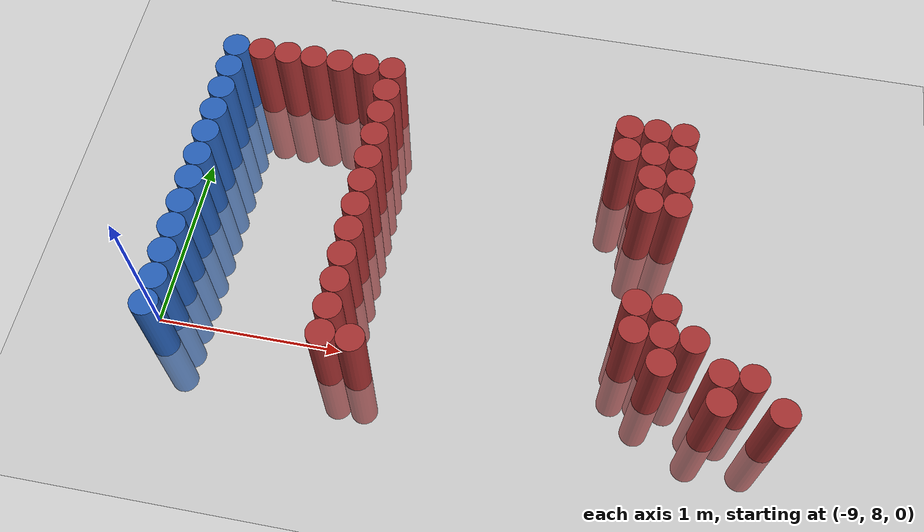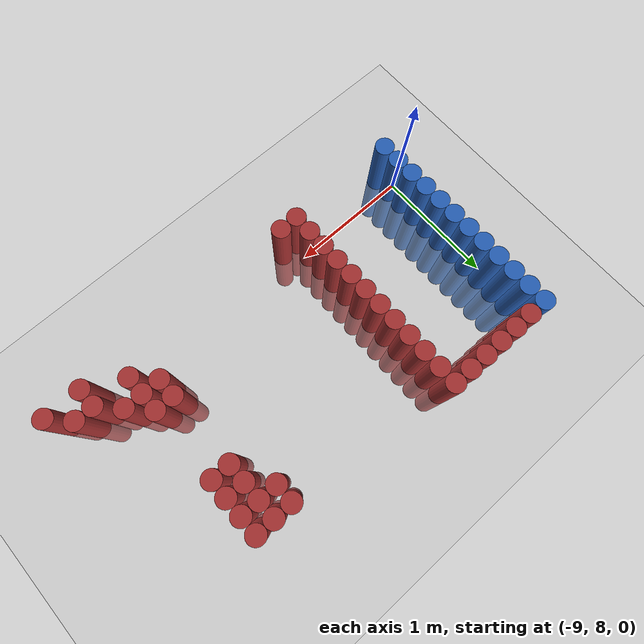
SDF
<sdf version="1.6">
 <world name="default">
  <model name="ground_plane">
   <static>1</static>
   <link name="link">
    <collision name="collision">
     <geometry><plane><normal>0 0 1</normal><size>100 100</size></plane></geometry>
     <surface><friction><ode><mu>100</mu><mu2>50</mu2></ode></friction></surface>
    </collision>
    <visual name="visual">
     <cast_shadows>0</cast_shadows>
     <geometry><plane><normal>0 0 1</normal><size>100 100</size></plane></geometry>
     <material>
      <script><uri>file://media/materials/scripts/gazebo.material</uri><name>Gazebo/Grey</name></script>
     </material>
    </visual>
   </link>
  </model>
  <model name="unit_cylinder_143">
   <static>1</static>
   <pose>-8.925000 7.875000 0.000000 0.000000 0.000000 0.000000</pose>
   <link name="link">
    <inertial>
     <mass>1</mass>
     <inertia><ixx>0.145833</ixx><ixy>0</ixy><ixz>0</ixz><iyy>0.145833</iyy><iyz>0</iyz><izz>0.125</izz></inertia>
    </inertial>
    <collision name="collision">
     <geometry><cylinder><radius>0.075000</radius><length>1</length></cylinder></geometry>
    </collision>
    <visual name="visual">
     <geometry><cylinder><radius>0.075000</radius><length>1</length></cylinder></geometry>
     <material>
      <ambient>0.152000 0.379000 0.720000 1</ambient>
      <diffuse>0.152000 0.379000 0.720000 1</diffuse>
     </material>
     <material>
      <script><name>Gazebo/Grey</name><uri>file://media/materials/scripts/gazebo.material</uri></script>
     </material>
    </visual>
   </link>
  </model>
  <model name="unit_cylinder_144">
   <static>1</static>
   <pose>-8.925000 8.025000 0.000000 0.000000 0.000000 0.000000</pose>
   <link name="link">
    <inertial>
     <mass>1</mass>
     <inertia><ixx>0.145833</ixx><ixy>0</ixy><ixz>0</ixz><iyy>0.145833</iyy><iyz>0</iyz><izz>0.125</izz></inertia>
    </inertial>
    <collision name="collision">
     <geometry><cylinder><radius>0.075000</radius><length>1</length></cylinder></geometry>
    </collision>
    <visual name="visual">
     <geometry><cylinder><radius>0.075000</radius><length>1</length></cylinder></geometry>
     <material>
      <ambient>0.152000 0.379000 0.720000 1</ambient>
      <diffuse>0.152000 0.379000 0.720000 1</diffuse>
     </material>
     <material>
      <script><name>Gazebo/Grey</name><uri>file://media/materials/scripts/gazebo.material</uri></script>
     </material>
    </visual>
   </link>
  </model>
  <model name="unit_cylinder_145">
   <static>1</static>
   <pose>-8.925000 8.175000 0.000000 0.000000 0.000000 0.000000</pose>
   <link name="link">
    <inertial>
     <mass>1</mass>
     <inertia><ixx>0.145833</ixx><ixy>0</ixy><ixz>0</ixz><iyy>0.145833</iyy><iyz>0</iyz><izz>0.125</izz></inertia>
    </inertial>
    <collision name="collision">
     <geometry><cylinder><radius>0.075000</radius><length>1</length></cylinder></geometry>
    </collision>
    <visual name="visual">
     <geometry><cylinder><radius>0.075000</radius><length>1</length></cylinder></geometry>
     <material>
      <ambient>0.152000 0.379000 0.720000 1</ambient>
      <diffuse>0.152000 0.379000 0.720000 1</diffuse>
     </material>
     <material>
      <script><name>Gazebo/Grey</name><uri>file://media/materials/scripts/gazebo.material</uri></script>
     </material>
    </visual>
   </link>
  </model>
  <model name="unit_cylinder_146">
   <static>1</static>
   <pose>-8.925000 8.325000 0.000000 0.000000 0.000000 0.000000</pose>
   <link name="link">
    <inertial>
     <mass>1</mass>
     <inertia><ixx>0.145833</ixx><ixy>0</ixy><ixz>0</ixz><iyy>0.145833</iyy><iyz>0</iyz><izz>0.125</izz></inertia>
    </inertial>
    <collision name="collision">
     <geometry><cylinder><radius>0.075000</radius><length>1</length></cylinder></geometry>
    </collision>
    <visual name="visual">
     <geometry><cylinder><radius>0.075000</radius><length>1</length></cylinder></geometry>
     <material>
      <ambient>0.152000 0.379000 0.720000 1</ambient>
      <diffuse>0.152000 0.379000 0.720000 1</diffuse>
     </material>
     <material>
      <script><name>Gazebo/Grey</name><uri>file://media/materials/scripts/gazebo.material</uri></script>
     </material>
    </visual>
   </link>
  </model>
  <model name="unit_cylinder_147">
   <static>1</static>
   <pose>-8.925000 8.475000 0.000000 0.000000 0.000000 0.000000</pose>
   <link name="link">
    <inertial>
     <mass>1</mass>
     <inertia><ixx>0.145833</ixx><ixy>0</ixy><ixz>0</ixz><iyy>0.145833</iyy><iyz>0</iyz><izz>0.125</izz></inertia>
    </inertial>
    <collision name="collision">
     <geometry><cylinder><radius>0.075000</radius><length>1</length></cylinder></geometry>
    </collision>
    <visual name="visual">
     <geometry><cylinder><radius>0.075000</radius><length>1</length></cylinder></geometry>
     <material>
      <ambient>0.152000 0.379000 0.720000 1</ambient>
      <diffuse>0.152000 0.379000 0.720000 1</diffuse>
     </material>
     <material>
      <script><name>Gazebo/Grey</name><uri>file://media/materials/scripts/gazebo.material</uri></script>
     </material>
    </visual>
   </link>
  </model>
  <model name="unit_cylinder_148">
   <static>1</static>
   <pose>-8.925000 8.625000 0.000000 0.000000 0.000000 0.000000</pose>
   <link name="link">
    <inertial>
     <mass>1</mass>
     <inertia><ixx>0.145833</ixx><ixy>0</ixy><ixz>0</ixz><iyy>0.145833</iyy><iyz>0</iyz><izz>0.125</izz></inertia>
    </inertial>
    <collision name="collision">
     <geometry><cylinder><radius>0.075000</radius><length>1</length></cylinder></geometry>
    </collision>
    <visual name="visual">
     <geometry><cylinder><radius>0.075000</radius><length>1</length></cylinder></geometry>
     <material>
      <ambient>0.152000 0.379000 0.720000 1</ambient>
      <diffuse>0.152000 0.379000 0.720000 1</diffuse>
     </material>
     <material>
      <script><name>Gazebo/Grey</name><uri>file://media/materials/scripts/gazebo.material</uri></script>
     </material>
    </visual>
   </link>
  </model>
  <model name="unit_cylinder_149">
   <static>1</static>
   <pose>-8.925000 8.775000 0.000000 0.000000 0.000000 0.000000</pose>
   <link name="link">
    <inertial>
     <mass>1</mass>
     <inertia><ixx>0.145833</ixx><ixy>0</ixy><ixz>0</ixz><iyy>0.145833</iyy><iyz>0</iyz><izz>0.125</izz></inertia>
    </inertial>
    <collision name="collision">
     <geometry><cylinder><radius>0.075000</radius><length>1</length></cylinder></geometry>
    </collision>
    <visual name="visual">
     <geometry><cylinder><radius>0.075000</radius><length>1</length></cylinder></geometry>
     <material>
      <ambient>0.152000 0.379000 0.720000 1</ambient>
      <diffuse>0.152000 0.379000 0.720000 1</diffuse>
     </material>
     <material>
      <script><name>Gazebo/Grey</name><uri>file://media/materials/scripts/gazebo.material</uri></script>
     </material>
    </visual>
   </link>
  </model>
  <model name="unit_cylinder_150">
   <static>1</static>
   <pose>-8.925000 8.925000 0.000000 0.000000 0.000000 0.000000</pose>
   <link name="link">
    <inertial>
     <mass>1</mass>
     <inertia><ixx>0.145833</ixx><ixy>0</ixy><ixz>0</ixz><iyy>0.145833</iyy><iyz>0</iyz><izz>0.125</izz></inertia>
    </inertial>
    <collision name="collision">
     <geometry><cylinder><radius>0.075000</radius><length>1</length></cylinder></geometry>
    </collision>
    <visual name="visual">
     <geometry><cylinder><radius>0.075000</radius><length>1</length></cylinder></geometry>
     <material>
      <ambient>0.152000 0.379000 0.720000 1</ambient>
      <diffuse>0.152000 0.379000 0.720000 1</diffuse>
     </material>
     <material>
      <script><name>Gazebo/Grey</name><uri>file://media/materials/scripts/gazebo.material</uri></script>
     </material>
    </visual>
   </link>
  </model>
  <model name="unit_cylinder_151">
   <static>1</static>
   <pose>-8.925000 9.075000 0.000000 0.000000 0.000000 0.000000</pose>
   <link name="link">
    <inertial>
     <mass>1</mass>
     <inertia><ixx>0.145833</ixx><ixy>0</ixy><ixz>0</ixz><iyy>0.145833</iyy><iyz>0</iyz><izz>0.125</izz></inertia>
    </inertial>
    <collision name="collision">
     <geometry><cylinder><radius>0.075000</radius><length>1</length></cylinder></geometry>
    </collision>
    <visual name="visual">
     <geometry><cylinder><radius>0.075000</radius><length>1</length></cylinder></geometry>
     <material>
      <ambient>0.152000 0.379000 0.720000 1</ambient>
      <diffuse>0.152000 0.379000 0.720000 1</diffuse>
     </material>
     <material>
      <script><name>Gazebo/Grey</name><uri>file://media/materials/scripts/gazebo.material</uri></script>
     </material>
    </visual>
   </link>
  </model>
  <model name="unit_cylinder_152">
   <static>1</static>
   <pose>-8.925000 9.225000 0.000000 0.000000 0.000000 0.000000</pose>
   <link name="link">
    <inertial>
     <mass>1</mass>
     <inertia><ixx>0.145833</ixx><ixy>0</ixy><ixz>0</ixz><iyy>0.145833</iyy><iyz>0</iyz><izz>0.125</izz></inertia>
    </inertial>
    <collision name="collision">
     <geometry><cylinder><radius>0.075000</radius><length>1</length></cylinder></geometry>
    </collision>
    <visual name="visual">
     <geometry><cylinder><radius>0.075000</radius><length>1</length></cylinder></geometry>
     <material>
      <ambient>0.152000 0.379000 0.720000 1</ambient>
      <diffuse>0.152000 0.379000 0.720000 1</diffuse>
     </material>
     <material>
      <script><name>Gazebo/Grey</name><uri>file://media/materials/scripts/gazebo.material</uri></script>
     </material>
    </visual>
   </link>
  </model>
  <model name="unit_cylinder_153">
   <static>1</static>
   <pose>-8.925000 9.375000 0.000000 0.000000 0.000000 0.000000</pose>
   <link name="link">
    <inertial>
     <mass>1</mass>
     <inertia><ixx>0.145833</ixx><ixy>0</ixy><ixz>0</ixz><iyy>0.145833</iyy><iyz>0</iyz><izz>0.125</izz></inertia>
    </inertial>
    <collision name="collision">
     <geometry><cylinder><radius>0.075000</radius><length>1</length></cylinder></geometry>
    </collision>
    <visual name="visual">
     <geometry><cylinder><radius>0.075000</radius><length>1</length></cylinder></geometry>
     <material>
      <ambient>0.152000 0.379000 0.720000 1</ambient>
      <diffuse>0.152000 0.379000 0.720000 1</diffuse>
     </material>
     <material>
      <script><name>Gazebo/Grey</name><uri>file://media/materials/scripts/gazebo.material</uri></script>
     </material>
    </visual>
   </link>
  </model>
  <model name="unit_cylinder_154">
   <static>1</static>
   <pose>-8.925000 9.525000 0.000000 0.000000 0.000000 0.000000</pose>
   <link name="link">
    <inertial>
     <mass>1</mass>
     <inertia><ixx>0.145833</ixx><ixy>0</ixy><ixz>0</ixz><iyy>0.145833</iyy><iyz>0</iyz><izz>0.125</izz></inertia>
    </inertial>
    <collision name="collision">
     <geometry><cylinder><radius>0.075000</radius><length>1</length></cylinder></geometry>
    </collision>
    <visual name="visual">
     <geometry><cylinder><radius>0.075000</radius><length>1</length></cylinder></geometry>
     <material>
      <ambient>0.152000 0.379000 0.720000 1</ambient>
      <diffuse>0.152000 0.379000 0.720000 1</diffuse>
     </material>
     <material>
      <script><name>Gazebo/Grey</name><uri>file://media/materials/scripts/gazebo.material</uri></script>
     </material>
    </visual>
   </link>
  </model>
  <model name="unit_cylinder_156">
   <static>1</static>
   <pose>-8.775000 9.525000 0.000000 0.000000 0.000000 0.000000</pose>
   <link name="link">
    <inertial>
     <mass>1</mass>
     <inertia><ixx>0.145833</ixx><ixy>0</ixy><ixz>0</ixz><iyy>0.145833</iyy><iyz>0</iyz><izz>0.125</izz></inertia>
    </inertial>
    <collision name="collision">
     <geometry><cylinder><radius>0.075000</radius><length>1</length></cylinder></geometry>
    </collision>
    <visual name="visual">
     <geometry><cylinder><radius>0.075000</radius><length>1</length></cylinder></geometry>
     <material>
      <ambient>0.648000 0.192000 0.192000 1</ambient>
      <diffuse>0.648000 0.192000 0.192000 1</diffuse>
     </material>
     <material>
      <script><name>Gazebo/Grey</name><uri>file://media/materials/scripts/gazebo.material</uri></script>
     </material>
    </visual>
   </link>
  </model>
  <model name="unit_cylinder_158">
   <static>1</static>
   <pose>-8.625000 9.525000 0.000000 0.000000 0.000000 0.000000</pose>
   <link name="link">
    <inertial>
     <mass>1</mass>
     <inertia><ixx>0.145833</ixx><ixy>0</ixy><ixz>0</ixz><iyy>0.145833</iyy><iyz>0</iyz><izz>0.125</izz></inertia>
    </inertial>
    <collision name="collision">
     <geometry><cylinder><radius>0.075000</radius><length>1</length></cylinder></geometry>
    </collision>
    <visual name="visual">
     <geometry><cylinder><radius>0.075000</radius><length>1</length></cylinder></geometry>
     <material>
      <ambient>0.648000 0.192000 0.192000 1</ambient>
      <diffuse>0.648000 0.192000 0.192000 1</diffuse>
     </material>
     <material>
      <script><name>Gazebo/Grey</name><uri>file://media/materials/scripts/gazebo.material</uri></script>
     </material>
    </visual>
   </link>
  </model>
  <model name="unit_cylinder_160">
   <static>1</static>
   <pose>-8.475000 9.525000 0.000000 0.000000 0.000000 0.000000</pose>
   <link name="link">
    <inertial>
     <mass>1</mass>
     <inertia><ixx>0.145833</ixx><ixy>0</ixy><ixz>0</ixz><iyy>0.145833</iyy><iyz>0</iyz><izz>0.125</izz></inertia>
    </inertial>
    <collision name="collision">
     <geometry><cylinder><radius>0.075000</radius><length>1</length></cylinder></geometry>
    </collision>
    <visual name="visual">
     <geometry><cylinder><radius>0.075000</radius><length>1</length></cylinder></geometry>
     <material>
      <ambient>0.648000 0.192000 0.192000 1</ambient>
      <diffuse>0.648000 0.192000 0.192000 1</diffuse>
     </material>
     <material>
      <script><name>Gazebo/Grey</name><uri>file://media/materials/scripts/gazebo.material</uri></script>
     </material>
    </visual>
   </link>
  </model>
  <model name="unit_cylinder_162">
   <static>1</static>
   <pose>-8.325000 9.525000 0.000000 0.000000 0.000000 0.000000</pose>
   <link name="link">
    <inertial>
     <mass>1</mass>
     <inertia><ixx>0.145833</ixx><ixy>0</ixy><ixz>0</ixz><iyy>0.145833</iyy><iyz>0</iyz><izz>0.125</izz></inertia>
    </inertial>
    <collision name="collision">
     <geometry><cylinder><radius>0.075000</radius><length>1</length></cylinder></geometry>
    </collision>
    <visual name="visual">
     <geometry><cylinder><radius>0.075000</radius><length>1</length></cylinder></geometry>
     <material>
      <ambient>0.648000 0.192000 0.192000 1</ambient>
      <diffuse>0.648000 0.192000 0.192000 1</diffuse>
     </material>
     <material>
      <script><name>Gazebo/Grey</name><uri>file://media/materials/scripts/gazebo.material</uri></script>
     </material>
    </visual>
   </link>
  </model>
  <model name="unit_cylinder_164">
   <static>1</static>
   <pose>-8.175000 9.525000 0.000000 0.000000 0.000000 0.000000</pose>
   <link name="link">
    <inertial>
     <mass>1</mass>
     <inertia><ixx>0.145833</ixx><ixy>0</ixy><ixz>0</ixz><iyy>0.145833</iyy><iyz>0</iyz><izz>0.125</izz></inertia>
    </inertial>
    <collision name="collision">
     <geometry><cylinder><radius>0.075000</radius><length>1</length></cylinder></geometry>
    </collision>
    <visual name="visual">
     <geometry><cylinder><radius>0.075000</radius><length>1</length></cylinder></geometry>
     <material>
      <ambient>0.648000 0.192000 0.192000 1</ambient>
      <diffuse>0.648000 0.192000 0.192000 1</diffuse>
     </material>
     <material>
      <script><name>Gazebo/Grey</name><uri>file://media/materials/scripts/gazebo.material</uri></script>
     </material>
    </visual>
   </link>
  </model>
  <model name="unit_cylinder_166">
   <static>1</static>
   <pose>-8.025000 7.875000 0.000000 0.000000 0.000000 0.000000</pose>
   <link name="link">
    <inertial>
     <mass>1</mass>
     <inertia><ixx>0.145833</ixx><ixy>0</ixy><ixz>0</ixz><iyy>0.145833</iyy><iyz>0</iyz><izz>0.125</izz></inertia>
    </inertial>
    <collision name="collision">
     <geometry><cylinder><radius>0.075000</radius><length>1</length></cylinder></geometry>
    </collision>
    <visual name="visual">
     <geometry><cylinder><radius>0.075000</radius><length>1</length></cylinder></geometry>
     <material>
      <ambient>0.648000 0.192000 0.192000 1</ambient>
      <diffuse>0.648000 0.192000 0.192000 1</diffuse>
     </material>
     <material>
      <script><name>Gazebo/Grey</name><uri>file://media/materials/scripts/gazebo.material</uri></script>
     </material>
    </visual>
   </link>
  </model>
  <model name="unit_cylinder_167">
   <static>1</static>
   <pose>-8.025000 8.025000 0.000000 0.000000 0.000000 0.000000</pose>
   <link name="link">
    <inertial>
     <mass>1</mass>
     <inertia><ixx>0.145833</ixx><ixy>0</ixy><ixz>0</ixz><iyy>0.145833</iyy><iyz>0</iyz><izz>0.125</izz></inertia>
    </inertial>
    <collision name="collision">
     <geometry><cylinder><radius>0.075000</radius><length>1</length></cylinder></geometry>
    </collision>
    <visual name="visual">
     <geometry><cylinder><radius>0.075000</radius><length>1</length></cylinder></geometry>
     <material>
      <ambient>0.648000 0.192000 0.192000 1</ambient>
      <diffuse>0.648000 0.192000 0.192000 1</diffuse>
     </material>
     <material>
      <script><name>Gazebo/Grey</name><uri>file://media/materials/scripts/gazebo.material</uri></script>
     </material>
    </visual>
   </link>
  </model>
  <model name="unit_cylinder_168">
   <static>1</static>
   <pose>-8.025000 8.175000 0.000000 0.000000 0.000000 0.000000</pose>
   <link name="link">
    <inertial>
     <mass>1</mass>
     <inertia><ixx>0.145833</ixx><ixy>0</ixy><ixz>0</ixz><iyy>0.145833</iyy><iyz>0</iyz><izz>0.125</izz></inertia>
    </inertial>
    <collision name="collision">
     <geometry><cylinder><radius>0.075000</radius><length>1</length></cylinder></geometry>
    </collision>
    <visual name="visual">
     <geometry><cylinder><radius>0.075000</radius><length>1</length></cylinder></geometry>
     <material>
      <ambient>0.648000 0.192000 0.192000 1</ambient>
      <diffuse>0.648000 0.192000 0.192000 1</diffuse>
     </material>
     <material>
      <script><name>Gazebo/Grey</name><uri>file://media/materials/scripts/gazebo.material</uri></script>
     </material>
    </visual>
   </link>
  </model>
  <model name="unit_cylinder_169">
   <static>1</static>
   <pose>-8.025000 8.325000 0.000000 0.000000 0.000000 0.000000</pose>
   <link name="link">
    <inertial>
     <mass>1</mass>
     <inertia><ixx>0.145833</ixx><ixy>0</ixy><ixz>0</ixz><iyy>0.145833</iyy><iyz>0</iyz><izz>0.125</izz></inertia>
    </inertial>
    <collision name="collision">
     <geometry><cylinder><radius>0.075000</radius><length>1</length></cylinder></geometry>
    </collision>
    <visual name="visual">
     <geometry><cylinder><radius>0.075000</radius><length>1</length></cylinder></geometry>
     <material>
      <ambient>0.648000 0.192000 0.192000 1</ambient>
      <diffuse>0.648000 0.192000 0.192000 1</diffuse>
     </material>
     <material>
      <script><name>Gazebo/Grey</name><uri>file://media/materials/scripts/gazebo.material</uri></script>
     </material>
    </visual>
   </link>
  </model>
  <model name="unit_cylinder_170">
   <static>1</static>
   <pose>-8.025000 8.475000 0.000000 0.000000 0.000000 0.000000</pose>
   <link name="link">
    <inertial>
     <mass>1</mass>
     <inertia><ixx>0.145833</ixx><ixy>0</ixy><ixz>0</ixz><iyy>0.145833</iyy><iyz>0</iyz><izz>0.125</izz></inertia>
    </inertial>
    <collision name="collision">
     <geometry><cylinder><radius>0.075000</radius><length>1</length></cylinder></geometry>
    </collision>
    <visual name="visual">
     <geometry><cylinder><radius>0.075000</radius><length>1</length></cylinder></geometry>
     <material>
      <ambient>0.648000 0.192000 0.192000 1</ambient>
      <diffuse>0.648000 0.192000 0.192000 1</diffuse>
     </material>
     <material>
      <script><name>Gazebo/Grey</name><uri>file://media/materials/scripts/gazebo.material</uri></script>
     </material>
    </visual>
   </link>
  </model>
  <model name="unit_cylinder_171">
   <static>1</static>
   <pose>-8.025000 8.625000 0.000000 0.000000 0.000000 0.000000</pose>
   <link name="link">
    <inertial>
     <mass>1</mass>
     <inertia><ixx>0.145833</ixx><ixy>0</ixy><ixz>0</ixz><iyy>0.145833</iyy><iyz>0</iyz><izz>0.125</izz></inertia>
    </inertial>
    <collision name="collision">
     <geometry><cylinder><radius>0.075000</radius><length>1</length></cylinder></geometry>
    </collision>
    <visual name="visual">
     <geometry><cylinder><radius>0.075000</radius><length>1</length></cylinder></geometry>
     <material>
      <ambient>0.648000 0.192000 0.192000 1</ambient>
      <diffuse>0.648000 0.192000 0.192000 1</diffuse>
     </material>
     <material>
      <script><name>Gazebo/Grey</name><uri>file://media/materials/scripts/gazebo.material</uri></script>
     </material>
    </visual>
   </link>
  </model>
  <model name="unit_cylinder_172">
   <static>1</static>
   <pose>-8.025000 8.775000 0.000000 0.000000 0.000000 0.000000</pose>
   <link name="link">
    <inertial>
     <mass>1</mass>
     <inertia><ixx>0.145833</ixx><ixy>0</ixy><ixz>0</ixz><iyy>0.145833</iyy><iyz>0</iyz><izz>0.125</izz></inertia>
    </inertial>
    <collision name="collision">
     <geometry><cylinder><radius>0.075000</radius><length>1</length></cylinder></geometry>
    </collision>
    <visual name="visual">
     <geometry><cylinder><radius>0.075000</radius><length>1</length></cylinder></geometry>
     <material>
      <ambient>0.648000 0.192000 0.192000 1</ambient>
      <diffuse>0.648000 0.192000 0.192000 1</diffuse>
     </material>
     <material>
      <script><name>Gazebo/Grey</name><uri>file://media/materials/scripts/gazebo.material</uri></script>
     </material>
    </visual>
   </link>
  </model>
  <model name="unit_cylinder_173">
   <static>1</static>
   <pose>-8.025000 8.925000 0.000000 0.000000 0.000000 0.000000</pose>
   <link name="link">
    <inertial>
     <mass>1</mass>
     <inertia><ixx>0.145833</ixx><ixy>0</ixy><ixz>0</ixz><iyy>0.145833</iyy><iyz>0</iyz><izz>0.125</izz></inertia>
    </inertial>
    <collision name="collision">
     <geometry><cylinder><radius>0.075000</radius><length>1</length></cylinder></geometry>
    </collision>
    <visual name="visual">
     <geometry><cylinder><radius>0.075000</radius><length>1</length></cylinder></geometry>
     <material>
      <ambient>0.648000 0.192000 0.192000 1</ambient>
      <diffuse>0.648000 0.192000 0.192000 1</diffuse>
     </material>
     <material>
      <script><name>Gazebo/Grey</name><uri>file://media/materials/scripts/gazebo.material</uri></script>
     </material>
    </visual>
   </link>
  </model>
  <model name="unit_cylinder_174">
   <static>1</static>
   <pose>-8.025000 9.075000 0.000000 0.000000 0.000000 0.000000</pose>
   <link name="link">
    <inertial>
     <mass>1</mass>
     <inertia><ixx>0.145833</ixx><ixy>0</ixy><ixz>0</ixz><iyy>0.145833</iyy><iyz>0</iyz><izz>0.125</izz></inertia>
    </inertial>
    <collision name="collision">
     <geometry><cylinder><radius>0.075000</radius><length>1</length></cylinder></geometry>
    </collision>
    <visual name="visual">
     <geometry><cylinder><radius>0.075000</radius><length>1</length></cylinder></geometry>
     <material>
      <ambient>0.648000 0.192000 0.192000 1</ambient>
      <diffuse>0.648000 0.192000 0.192000 1</diffuse>
     </material>
     <material>
      <script><name>Gazebo/Grey</name><uri>file://media/materials/scripts/gazebo.material</uri></script>
     </material>
    </visual>
   </link>
  </model>
  <model name="unit_cylinder_175">
   <static>1</static>
   <pose>-8.025000 9.225000 0.000000 0.000000 0.000000 0.000000</pose>
   <link name="link">
    <inertial>
     <mass>1</mass>
     <inertia><ixx>0.145833</ixx><ixy>0</ixy><ixz>0</ixz><iyy>0.145833</iyy><iyz>0</iyz><izz>0.125</izz></inertia>
    </inertial>
    <collision name="collision">
     <geometry><cylinder><radius>0.075000</radius><length>1</length></cylinder></geometry>
    </collision>
    <visual name="visual">
     <geometry><cylinder><radius>0.075000</radius><length>1</length></cylinder></geometry>
     <material>
      <ambient>0.648000 0.192000 0.192000 1</ambient>
      <diffuse>0.648000 0.192000 0.192000 1</diffuse>
     </material>
     <material>
      <script><name>Gazebo/Grey</name><uri>file://media/materials/scripts/gazebo.material</uri></script>
     </material>
    </visual>
   </link>
  </model>
  <model name="unit_cylinder_176">
   <static>1</static>
   <pose>-8.025000 9.375000 0.000000 0.000000 0.000000 0.000000</pose>
   <link name="link">
    <inertial>
     <mass>1</mass>
     <inertia><ixx>0.145833</ixx><ixy>0</ixy><ixz>0</ixz><iyy>0.145833</iyy><iyz>0</iyz><izz>0.125</izz></inertia>
    </inertial>
    <collision name="collision">
     <geometry><cylinder><radius>0.075000</radius><length>1</length></cylinder></geometry>
    </collision>
    <visual name="visual">
     <geometry><cylinder><radius>0.075000</radius><length>1</length></cylinder></geometry>
     <material>
      <ambient>0.648000 0.192000 0.192000 1</ambient>
      <diffuse>0.648000 0.192000 0.192000 1</diffuse>
     </material>
     <material>
      <script><name>Gazebo/Grey</name><uri>file://media/materials/scripts/gazebo.material</uri></script>
     </material>
    </visual>
   </link>
  </model>
  <model name="unit_cylinder_177">
   <static>1</static>
   <pose>-8.025000 9.525000 0.000000 0.000000 0.000000 0.000000</pose>
   <link name="link">
    <inertial>
     <mass>1</mass>
     <inertia><ixx>0.145833</ixx><ixy>0</ixy><ixz>0</ixz><iyy>0.145833</iyy><iyz>0</iyz><izz>0.125</izz></inertia>
    </inertial>
    <collision name="collision">
     <geometry><cylinder><radius>0.075000</radius><length>1</length></cylinder></geometry>
    </collision>
    <visual name="visual">
     <geometry><cylinder><radius>0.075000</radius><length>1</length></cylinder></geometry>
     <material>
      <ambient>0.648000 0.192000 0.192000 1</ambient>
      <diffuse>0.648000 0.192000 0.192000 1</diffuse>
     </material>
     <material>
      <script><name>Gazebo/Grey</name><uri>file://media/materials/scripts/gazebo.material</uri></script>
     </material>
    </visual>
   </link>
  </model>
  <model name="unit_cylinder_192">
   <static>1</static>
   <pose>-7.875000 7.875000 0.000000 0.000000 0.000000 0.000000</pose>
   <link name="link">
    <inertial>
     <mass>1</mass>
     <inertia><ixx>0.145833</ixx><ixy>0</ixy><ixz>0</ixz><iyy>0.145833</iyy><iyz>0</iyz><izz>0.125</izz></inertia>
    </inertial>
    <collision name="collision">
     <geometry><cylinder><radius>0.075000</radius><length>1</length></cylinder></geometry>
    </collision>
    <visual name="visual">
     <geometry><cylinder><radius>0.075000</radius><length>1</length></cylinder></geometry>
     <material>
      <ambient>0.648000 0.192000 0.192000 1</ambient>
      <diffuse>0.648000 0.192000 0.192000 1</diffuse>
     </material>
     <material>
      <script><name>Gazebo/Grey</name><uri>file://media/materials/scripts/gazebo.material</uri></script>
     </material>
    </visual>
   </link>
  </model>
  <model name="unit_cylinder_203">
   <static>1</static>
   <pose>-6.675000 9.225000 0.000000 0.000000 0.000000 0.000000</pose>
   <link name="link">
    <inertial>
     <mass>1</mass>
     <inertia><ixx>0.145833</ixx><ixy>0</ixy><ixz>0</ixz><iyy>0.145833</iyy><iyz>0</iyz><izz>0.125</izz></inertia>
    </inertial>
    <collision name="collision">
     <geometry><cylinder><radius>0.075000</radius><length>1</length></cylinder></geometry>
    </collision>
    <visual name="visual">
     <geometry><cylinder><radius>0.075000</radius><length>1</length></cylinder></geometry>
     <material>
      <ambient>0.648000 0.192000 0.192000 1</ambient>
      <diffuse>0.648000 0.192000 0.192000 1</diffuse>
     </material>
     <material>
      <script><name>Gazebo/Grey</name><uri>file://media/materials/scripts/gazebo.material</uri></script>
     </material>
    </visual>
   </link>
  </model>
  <model name="unit_cylinder_204">
   <static>1</static>
   <pose>-6.675000 9.375000 0.000000 0.000000 0.000000 0.000000</pose>
   <link name="link">
    <inertial>
     <mass>1</mass>
     <inertia><ixx>0.145833</ixx><ixy>0</ixy><ixz>0</ixz><iyy>0.145833</iyy><iyz>0</iyz><izz>0.125</izz></inertia>
    </inertial>
    <collision name="collision">
     <geometry><cylinder><radius>0.075000</radius><length>1</length></cylinder></geometry>
    </collision>
    <visual name="visual">
     <geometry><cylinder><radius>0.075000</radius><length>1</length></cylinder></geometry>
     <material>
      <ambient>0.648000 0.192000 0.192000 1</ambient>
      <diffuse>0.648000 0.192000 0.192000 1</diffuse>
     </material>
     <material>
      <script><name>Gazebo/Grey</name><uri>file://media/materials/scripts/gazebo.material</uri></script>
     </material>
    </visual>
   </link>
  </model>
  <model name="unit_cylinder_206">
   <static>1</static>
   <pose>-6.525000 8.175000 0.000000 0.000000 0.000000 0.000000</pose>
   <link name="link">
    <inertial>
     <mass>1</mass>
     <inertia><ixx>0.145833</ixx><ixy>0</ixy><ixz>0</ixz><iyy>0.145833</iyy><iyz>0</iyz><izz>0.125</izz></inertia>
    </inertial>
    <collision name="collision">
     <geometry><cylinder><radius>0.075000</radius><length>1</length></cylinder></geometry>
    </collision>
    <visual name="visual">
     <geometry><cylinder><radius>0.075000</radius><length>1</length></cylinder></geometry>
     <material>
      <ambient>0.648000 0.192000 0.192000 1</ambient>
      <diffuse>0.648000 0.192000 0.192000 1</diffuse>
     </material>
     <material>
      <script><name>Gazebo/Grey</name><uri>file://media/materials/scripts/gazebo.material</uri></script>
     </material>
    </visual>
   </link>
  </model>
  <model name="unit_cylinder_207">
   <static>1</static>
   <pose>-6.525000 8.325000 0.000000 0.000000 0.000000 0.000000</pose>
   <link name="link">
    <inertial>
     <mass>1</mass>
     <inertia><ixx>0.145833</ixx><ixy>0</ixy><ixz>0</ixz><iyy>0.145833</iyy><iyz>0</iyz><izz>0.125</izz></inertia>
    </inertial>
    <collision name="collision">
     <geometry><cylinder><radius>0.075000</radius><length>1</length></cylinder></geometry>
    </collision>
    <visual name="visual">
     <geometry><cylinder><radius>0.075000</radius><length>1</length></cylinder></geometry>
     <material>
      <ambient>0.648000 0.192000 0.192000 1</ambient>
      <diffuse>0.648000 0.192000 0.192000 1</diffuse>
     </material>
     <material>
      <script><name>Gazebo/Grey</name><uri>file://media/materials/scripts/gazebo.material</uri></script>
     </material>
    </visual>
   </link>
  </model>
  <model name="unit_cylinder_208">
   <static>1</static>
   <pose>-6.525000 8.925000 0.000000 0.000000 0.000000 0.000000</pose>
   <link name="link">
    <inertial>
     <mass>1</mass>
     <inertia><ixx>0.145833</ixx><ixy>0</ixy><ixz>0</ixz><iyy>0.145833</iyy><iyz>0</iyz><izz>0.125</izz></inertia>
    </inertial>
    <collision name="collision">
     <geometry><cylinder><radius>0.075000</radius><length>1</length></cylinder></geometry>
    </collision>
    <visual name="visual">
     <geometry><cylinder><radius>0.075000</radius><length>1</length></cylinder></geometry>
     <material>
      <ambient>0.648000 0.192000 0.192000 1</ambient>
      <diffuse>0.648000 0.192000 0.192000 1</diffuse>
     </material>
     <material>
      <script><name>Gazebo/Grey</name><uri>file://media/materials/scripts/gazebo.material</uri></script>
     </material>
    </visual>
   </link>
  </model>
  <model name="unit_cylinder_209">
   <static>1</static>
   <pose>-6.525000 9.075000 0.000000 0.000000 0.000000 0.000000</pose>
   <link name="link">
    <inertial>
     <mass>1</mass>
     <inertia><ixx>0.145833</ixx><ixy>0</ixy><ixz>0</ixz><iyy>0.145833</iyy><iyz>0</iyz><izz>0.125</izz></inertia>
    </inertial>
    <collision name="collision">
     <geometry><cylinder><radius>0.075000</radius><length>1</length></cylinder></geometry>
    </collision>
    <visual name="visual">
     <geometry><cylinder><radius>0.075000</radius><length>1</length></cylinder></geometry>
     <material>
      <ambient>0.648000 0.192000 0.192000 1</ambient>
      <diffuse>0.648000 0.192000 0.192000 1</diffuse>
     </material>
     <material>
      <script><name>Gazebo/Grey</name><uri>file://media/materials/scripts/gazebo.material</uri></script>
     </material>
    </visual>
   </link>
  </model>
  <model name="unit_cylinder_210">
   <static>1</static>
   <pose>-6.525000 9.225000 0.000000 0.000000 0.000000 0.000000</pose>
   <link name="link">
    <inertial>
     <mass>1</mass>
     <inertia><ixx>0.145833</ixx><ixy>0</ixy><ixz>0</ixz><iyy>0.145833</iyy><iyz>0</iyz><izz>0.125</izz></inertia>
    </inertial>
    <collision name="collision">
     <geometry><cylinder><radius>0.075000</radius><length>1</length></cylinder></geometry>
    </collision>
    <visual name="visual">
     <geometry><cylinder><radius>0.075000</radius><length>1</length></cylinder></geometry>
     <material>
      <ambient>0.648000 0.192000 0.192000 1</ambient>
      <diffuse>0.648000 0.192000 0.192000 1</diffuse>
     </material>
     <material>
      <script><name>Gazebo/Grey</name><uri>file://media/materials/scripts/gazebo.material</uri></script>
     </material>
    </visual>
   </link>
  </model>
  <model name="unit_cylinder_211">
   <static>1</static>
   <pose>-6.525000 9.375000 0.000000 0.000000 0.000000 0.000000</pose>
   <link name="link">
    <inertial>
     <mass>1</mass>
     <inertia><ixx>0.145833</ixx><ixy>0</ixy><ixz>0</ixz><iyy>0.145833</iyy><iyz>0</iyz><izz>0.125</izz></inertia>
    </inertial>
    <collision name="collision">
     <geometry><cylinder><radius>0.075000</radius><length>1</length></cylinder></geometry>
    </collision>
    <visual name="visual">
     <geometry><cylinder><radius>0.075000</radius><length>1</length></cylinder></geometry>
     <material>
      <ambient>0.648000 0.192000 0.192000 1</ambient>
      <diffuse>0.648000 0.192000 0.192000 1</diffuse>
     </material>
     <material>
      <script><name>Gazebo/Grey</name><uri>file://media/materials/scripts/gazebo.material</uri></script>
     </material>
    </visual>
   </link>
  </model>
  <model name="unit_cylinder_215">
   <static>1</static>
   <pose>-6.375000 8.025000 0.000000 0.000000 0.000000 0.000000</pose>
   <link name="link">
    <inertial>
     <mass>1</mass>
     <inertia><ixx>0.145833</ixx><ixy>0</ixy><ixz>0</ixz><iyy>0.145833</iyy><iyz>0</iyz><izz>0.125</izz></inertia>
    </inertial>
    <collision name="collision">
     <geometry><cylinder><radius>0.075000</radius><length>1</length></cylinder></geometry>
    </collision>
    <visual name="visual">
     <geometry><cylinder><radius>0.075000</radius><length>1</length></cylinder></geometry>
     <material>
      <ambient>0.648000 0.192000 0.192000 1</ambient>
      <diffuse>0.648000 0.192000 0.192000 1</diffuse>
     </material>
     <material>
      <script><name>Gazebo/Grey</name><uri>file://media/materials/scripts/gazebo.material</uri></script>
     </material>
    </visual>
   </link>
  </model>
  <model name="unit_cylinder_216">
   <static>1</static>
   <pose>-6.375000 8.175000 0.000000 0.000000 0.000000 0.000000</pose>
   <link name="link">
    <inertial>
     <mass>1</mass>
     <inertia><ixx>0.145833</ixx><ixy>0</ixy><ixz>0</ixz><iyy>0.145833</iyy><iyz>0</iyz><izz>0.125</izz></inertia>
    </inertial>
    <collision name="collision">
     <geometry><cylinder><radius>0.075000</radius><length>1</length></cylinder></geometry>
    </collision>
    <visual name="visual">
     <geometry><cylinder><radius>0.075000</radius><length>1</length></cylinder></geometry>
     <material>
      <ambient>0.648000 0.192000 0.192000 1</ambient>
      <diffuse>0.648000 0.192000 0.192000 1</diffuse>
     </material>
     <material>
      <script><name>Gazebo/Grey</name><uri>file://media/materials/scripts/gazebo.material</uri></script>
     </material>
    </visual>
   </link>
  </model>
  <model name="unit_cylinder_217">
   <static>1</static>
   <pose>-6.375000 8.325000 0.000000 0.000000 0.000000 0.000000</pose>
   <link name="link">
    <inertial>
     <mass>1</mass>
     <inertia><ixx>0.145833</ixx><ixy>0</ixy><ixz>0</ixz><iyy>0.145833</iyy><iyz>0</iyz><izz>0.125</izz></inertia>
    </inertial>
    <collision name="collision">
     <geometry><cylinder><radius>0.075000</radius><length>1</length></cylinder></geometry>
    </collision>
    <visual name="visual">
     <geometry><cylinder><radius>0.075000</radius><length>1</length></cylinder></geometry>
     <material>
      <ambient>0.648000 0.192000 0.192000 1</ambient>
      <diffuse>0.648000 0.192000 0.192000 1</diffuse>
     </material>
     <material>
      <script><name>Gazebo/Grey</name><uri>file://media/materials/scripts/gazebo.material</uri></script>
     </material>
    </visual>
   </link>
  </model>
  <model name="unit_cylinder_218">
   <static>1</static>
   <pose>-6.375000 8.925000 0.000000 0.000000 0.000000 0.000000</pose>
   <link name="link">
    <inertial>
     <mass>1</mass>
     <inertia><ixx>0.145833</ixx><ixy>0</ixy><ixz>0</ixz><iyy>0.145833</iyy><iyz>0</iyz><izz>0.125</izz></inertia>
    </inertial>
    <collision name="collision">
     <geometry><cylinder><radius>0.075000</radius><length>1</length></cylinder></geometry>
    </collision>
    <visual name="visual">
     <geometry><cylinder><radius>0.075000</radius><length>1</length></cylinder></geometry>
     <material>
      <ambient>0.648000 0.192000 0.192000 1</ambient>
      <diffuse>0.648000 0.192000 0.192000 1</diffuse>
     </material>
     <material>
      <script><name>Gazebo/Grey</name><uri>file://media/materials/scripts/gazebo.material</uri></script>
     </material>
    </visual>
   </link>
  </model>
  <model name="unit_cylinder_219">
   <static>1</static>
   <pose>-6.375000 9.075000 0.000000 0.000000 0.000000 0.000000</pose>
   <link name="link">
    <inertial>
     <mass>1</mass>
     <inertia><ixx>0.145833</ixx><ixy>0</ixy><ixz>0</ixz><iyy>0.145833</iyy><iyz>0</iyz><izz>0.125</izz></inertia>
    </inertial>
    <collision name="collision">
     <geometry><cylinder><radius>0.075000</radius><length>1</length></cylinder></geometry>
    </collision>
    <visual name="visual">
     <geometry><cylinder><radius>0.075000</radius><length>1</length></cylinder></geometry>
     <material>
      <ambient>0.648000 0.192000 0.192000 1</ambient>
      <diffuse>0.648000 0.192000 0.192000 1</diffuse>
     </material>
     <material>
      <script><name>Gazebo/Grey</name><uri>file://media/materials/scripts/gazebo.material</uri></script>
     </material>
    </visual>
   </link>
  </model>
  <model name="unit_cylinder_220">
   <static>1</static>
   <pose>-6.375000 9.225000 0.000000 0.000000 0.000000 0.000000</pose>
   <link name="link">
    <inertial>
     <mass>1</mass>
     <inertia><ixx>0.145833</ixx><ixy>0</ixy><ixz>0</ixz><iyy>0.145833</iyy><iyz>0</iyz><izz>0.125</izz></inertia>
    </inertial>
    <collision name="collision">
     <geometry><cylinder><radius>0.075000</radius><length>1</length></cylinder></geometry>
    </collision>
    <visual name="visual">
     <geometry><cylinder><radius>0.075000</radius><length>1</length></cylinder></geometry>
     <material>
      <ambient>0.648000 0.192000 0.192000 1</ambient>
      <diffuse>0.648000 0.192000 0.192000 1</diffuse>
     </material>
     <material>
      <script><name>Gazebo/Grey</name><uri>file://media/materials/scripts/gazebo.material</uri></script>
     </material>
    </visual>
   </link>
  </model>
  <model name="unit_cylinder_221">
   <static>1</static>
   <pose>-6.375000 9.375000 0.000000 0.000000 0.000000 0.000000</pose>
   <link name="link">
    <inertial>
     <mass>1</mass>
     <inertia><ixx>0.145833</ixx><ixy>0</ixy><ixz>0</ixz><iyy>0.145833</iyy><iyz>0</iyz><izz>0.125</izz></inertia>
    </inertial>
    <collision name="collision">
     <geometry><cylinder><radius>0.075000</radius><length>1</length></cylinder></geometry>
    </collision>
    <visual name="visual">
     <geometry><cylinder><radius>0.075000</radius><length>1</length></cylinder></geometry>
     <material>
      <ambient>0.648000 0.192000 0.192000 1</ambient>
      <diffuse>0.648000 0.192000 0.192000 1</diffuse>
     </material>
     <material>
      <script><name>Gazebo/Grey</name><uri>file://media/materials/scripts/gazebo.material</uri></script>
     </material>
    </visual>
   </link>
  </model>
  <model name="unit_cylinder_227">
   <static>1</static>
   <pose>-6.225000 8.175000 0.000000 0.000000 0.000000 0.000000</pose>
   <link name="link">
    <inertial>
     <mass>1</mass>
     <inertia><ixx>0.145833</ixx><ixy>0</ixy><ixz>0</ixz><iyy>0.145833</iyy><iyz>0</iyz><izz>0.125</izz></inertia>
    </inertial>
    <collision name="collision">
     <geometry><cylinder><radius>0.075000</radius><length>1</length></cylinder></geometry>
    </collision>
    <visual name="visual">
     <geometry><cylinder><radius>0.075000</radius><length>1</length></cylinder></geometry>
     <material>
      <ambient>0.648000 0.192000 0.192000 1</ambient>
      <diffuse>0.648000 0.192000 0.192000 1</diffuse>
     </material>
     <material>
      <script><name>Gazebo/Grey</name><uri>file://media/materials/scripts/gazebo.material</uri></script>
     </material>
    </visual>
   </link>
  </model>
  <model name="unit_cylinder_235">
   <static>1</static>
   <pose>-6.075000 7.875000 0.000000 0.000000 0.000000 0.000000</pose>
   <link name="link">
    <inertial>
     <mass>1</mass>
     <inertia><ixx>0.145833</ixx><ixy>0</ixy><ixz>0</ixz><iyy>0.145833</iyy><iyz>0</iyz><izz>0.125</izz></inertia>
    </inertial>
    <collision name="collision">
     <geometry><cylinder><radius>0.075000</radius><length>1</length></cylinder></geometry>
    </collision>
    <visual name="visual">
     <geometry><cylinder><radius>0.075000</radius><length>1</length></cylinder></geometry>
     <material>
      <ambient>0.648000 0.192000 0.192000 1</ambient>
      <diffuse>0.648000 0.192000 0.192000 1</diffuse>
     </material>
     <material>
      <script><name>Gazebo/Grey</name><uri>file://media/materials/scripts/gazebo.material</uri></script>
     </material>
    </visual>
   </link>
  </model>
  <model name="unit_cylinder_236">
   <static>1</static>
   <pose>-6.075000 8.025000 0.000000 0.000000 0.000000 0.000000</pose>
   <link name="link">
    <inertial>
     <mass>1</mass>
     <inertia><ixx>0.145833</ixx><ixy>0</ixy><ixz>0</ixz><iyy>0.145833</iyy><iyz>0</iyz><izz>0.125</izz></inertia>
    </inertial>
    <collision name="collision">
     <geometry><cylinder><radius>0.075000</radius><length>1</length></cylinder></geometry>
    </collision>
    <visual name="visual">
     <geometry><cylinder><radius>0.075000</radius><length>1</length></cylinder></geometry>
     <material>
      <ambient>0.648000 0.192000 0.192000 1</ambient>
      <diffuse>0.648000 0.192000 0.192000 1</diffuse>
     </material>
     <material>
      <script><name>Gazebo/Grey</name><uri>file://media/materials/scripts/gazebo.material</uri></script>
     </material>
    </visual>
   </link>
  </model>
  <model name="unit_cylinder_247">
   <static>1</static>
   <pose>-5.925000 8.025000 0.000000 0.000000 0.000000 0.000000</pose>
   <link name="link">
    <inertial>
     <mass>1</mass>
     <inertia><ixx>0.145833</ixx><ixy>0</ixy><ixz>0</ixz><iyy>0.145833</iyy><iyz>0</iyz><izz>0.125</izz></inertia>
    </inertial>
    <collision name="collision">
     <geometry><cylinder><radius>0.075000</radius><length>1</length></cylinder></geometry>
    </collision>
    <visual name="visual">
     <geometry><cylinder><radius>0.075000</radius><length>1</length></cylinder></geometry>
     <material>
      <ambient>0.648000 0.192000 0.192000 1</ambient>
      <diffuse>0.648000 0.192000 0.192000 1</diffuse>
     </material>
     <material>
      <script><name>Gazebo/Grey</name><uri>file://media/materials/scripts/gazebo.material</uri></script>
     </material>
    </visual>
   </link>
  </model>
  <model name="unit_cylinder_256">
   <static>1</static>
   <pose>-5.775000 7.875000 0.000000 0.000000 0.000000 0.000000</pose>
   <link name="link">
    <inertial>
     <mass>1</mass>
     <inertia><ixx>0.145833</ixx><ixy>0</ixy><ixz>0</ixz><iyy>0.145833</iyy><iyz>0</iyz><izz>0.125</izz></inertia>
    </inertial>
    <collision name="collision">
     <geometry><cylinder><radius>0.075000</radius><length>1</length></cylinder></geometry>
    </collision>
    <visual name="visual">
     <geometry><cylinder><radius>0.075000</radius><length>1</length></cylinder></geometry>
     <material>
      <ambient>0.648000 0.192000 0.192000 1</ambient>
      <diffuse>0.648000 0.192000 0.192000 1</diffuse>
     </material>
     <material>
      <script><name>Gazebo/Grey</name><uri>file://media/materials/scripts/gazebo.material</uri></script>
     </material>
    </visual>
   </link>
  </model>
 </world>
</sdf>
